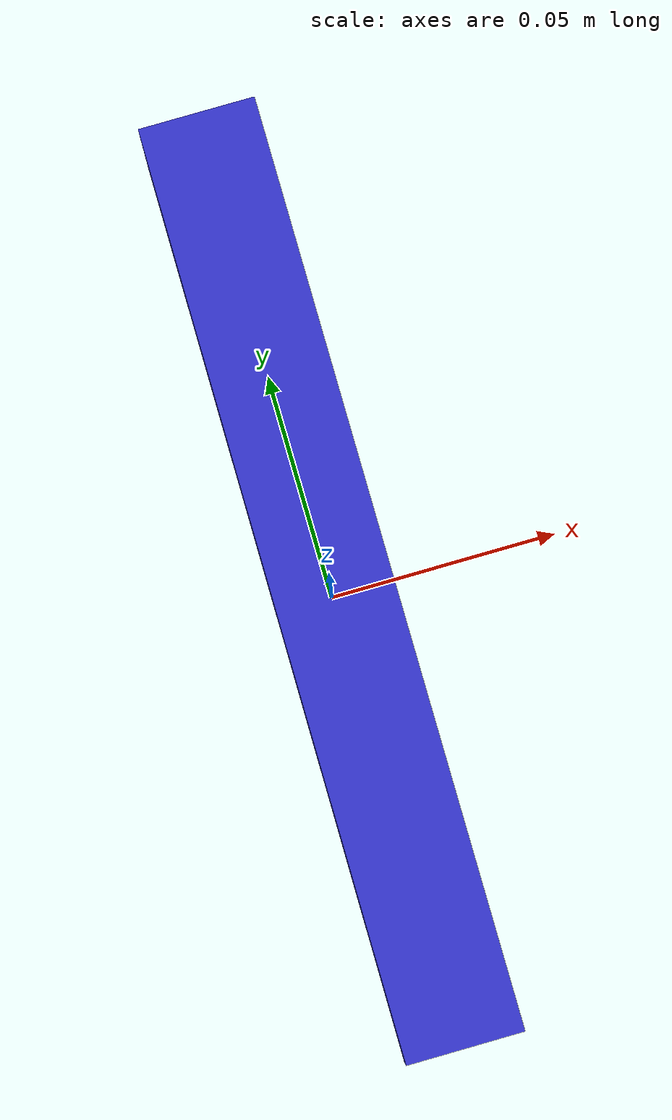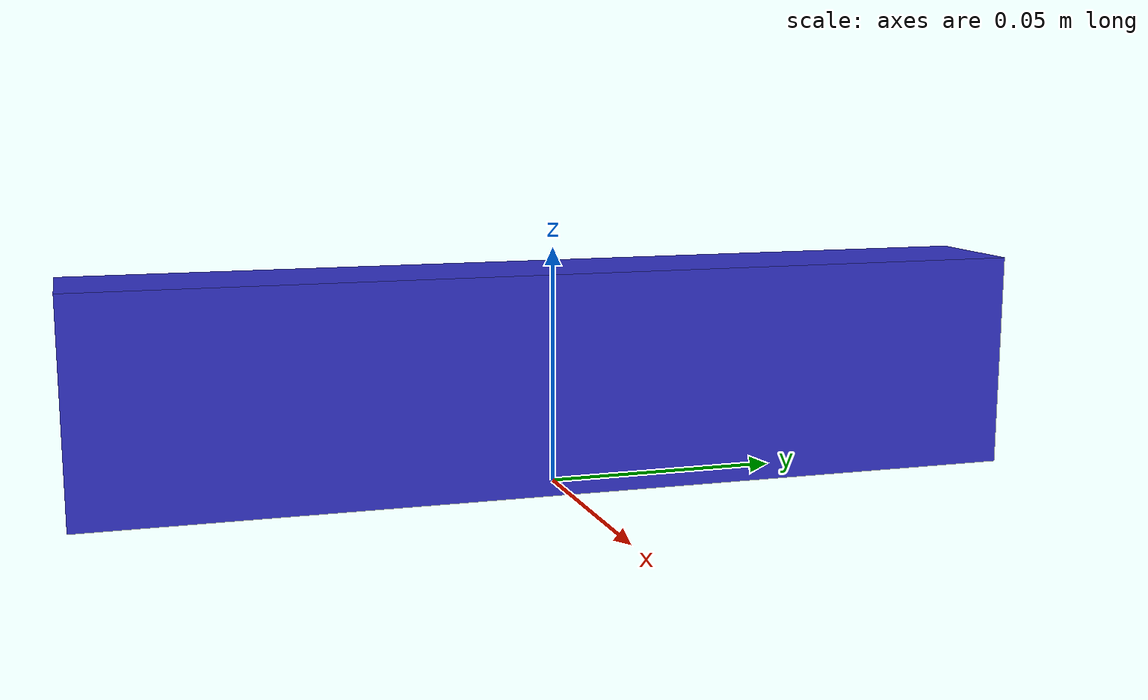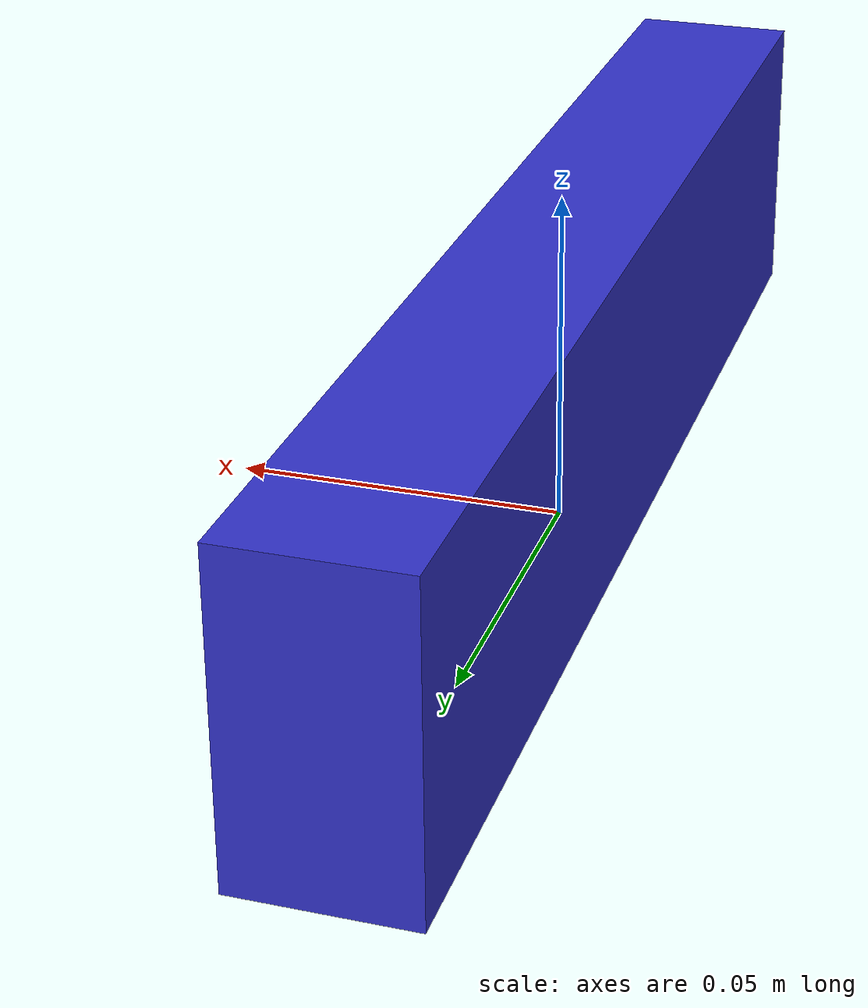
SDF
<?xml version="1.0"?>
<sdf version='1.6'>
<model name="brick">
  <link name="brick_link">
    <inertial>
      <pose frame=''>0 0 0 0 0 0 </pose>
      <mass>0.028</mass>
        <inertia>
          <ixx>1.17e-5</ixx>
          <ixy>0</ixy>
          <ixz>0</ixz>
          <iyy>1.9e-5</iyy>
          <iyz>0</iyz>
          <izz>1.9e-5</izz>
        </inertia>
    </inertial>
    <visual name='base_link_1'>
      <pose frame=''>0 0 0.023 0 0 0</pose>
      <geometry>
        <box>
          <size>0.025 0.2 0.046</size>
        </box>
      </geometry>
      <material>
        <diffuse>0.2 0.2 0.8 1.0</diffuse>
      </material>
    </visual>
    <collision name='box_collision'>
      <pose>0 0 0.023 0 0 0</pose>
      <geometry>
        <box>
          <size>0.025 0.2 0.046</size>
        </box>
      </geometry>
    </collision>
   </link>
  <joint name="surface_fixed" type="fixed">
    <parent>world</parent>
    <child>brick_link</child>
    <pose>0 0 0 0 0 0</pose>
  </joint>
</model>
</sdf>
